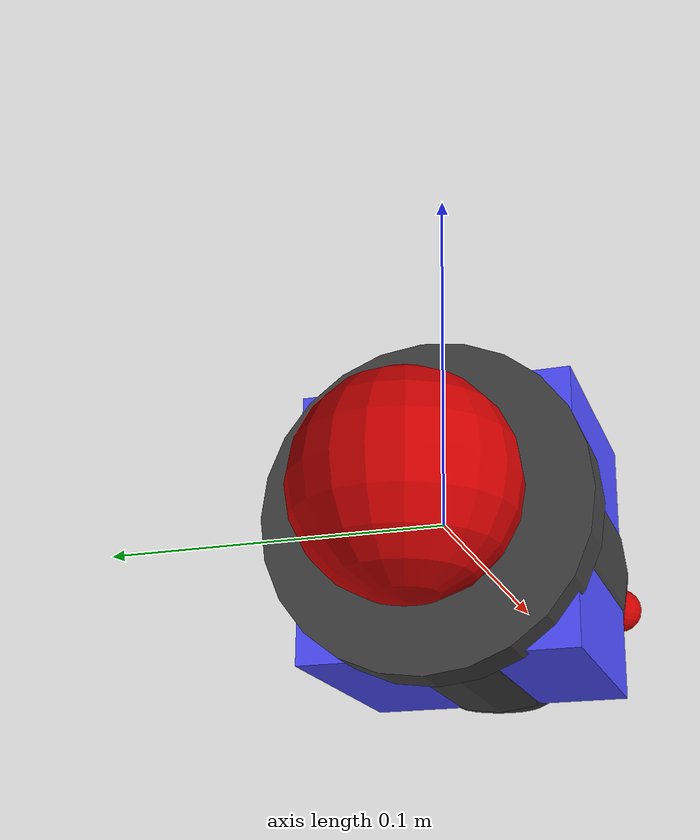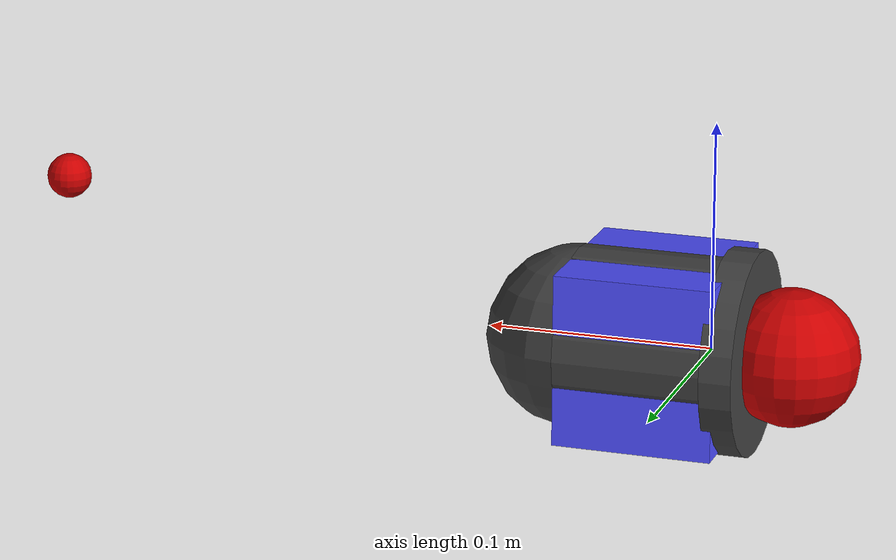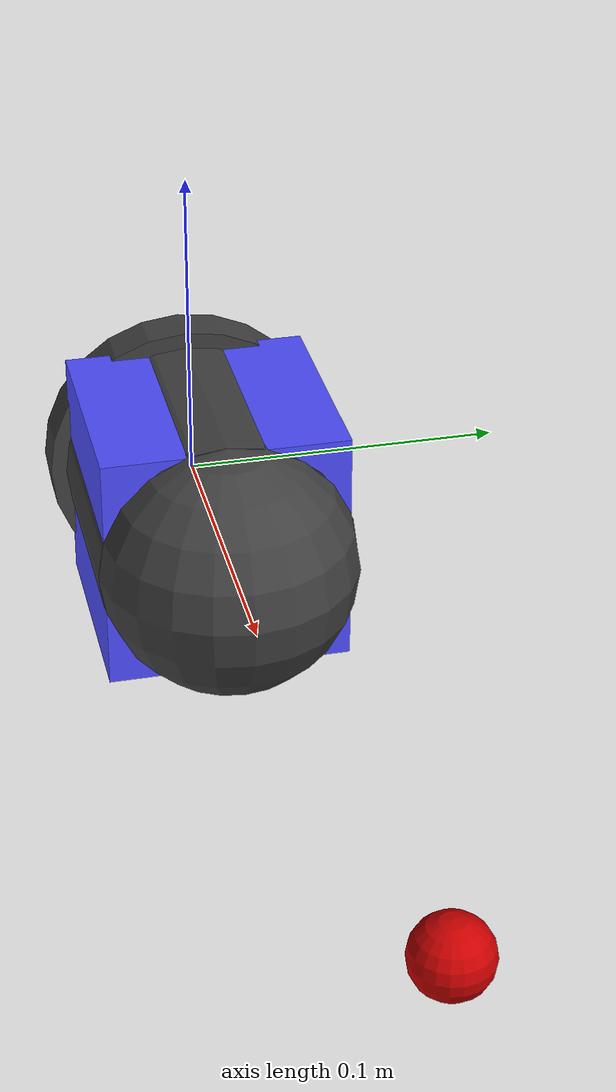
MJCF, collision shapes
<mujoco>
    <compiler angle="radian" inertiafromgeom="auto" inertiagrouprange="4 5"/>
    <asset>
        <texture name="T_plug_plast" type="cube" file="../textures/plaster1.png"/>

        <material name="plug_col" rgba="0.3 0.3 1.0 0.5" shininess="0" specular="0"/>
        <material name="plug_green" rgba="0 .5 0 1" shininess="1" reflectance=".7" specular=".5"/>
        <material name="plug_black" rgba=".25 .25 .25 1" shininess="1" reflectance=".7" specular=".5"/>
        <material name="plug_white" rgba=".6 .6 .6 1" shininess="1" reflectance=".7" specular=".5"/>
        <material name="plug_gold" rgba=".65 .51 .24 1" shininess="1" reflectance=".7" specular=".5"/>

        <material name="plug_plast" texture="T_plug_plast" shininess="1" reflectance=".7" specular=".5"/>

        <mesh file="../objects/meshes/plug/plug_head.stl" name="plug_head"/>
        <mesh file="../objects/meshes/plug/plug.stl" name="plug"/>
        <mesh file="../objects/meshes/plug/plug_wall.stl" name="plug_wall"/>
        <mesh file="../objects/meshes/plug/plug_plastic.stl" name="plug_plastic"/>
    </asset>
    <default>
        <default class="plug_base">
            <joint armature="0.001" damping="2" limited="true"/>
            <geom conaffinity="0" contype="0" group="1" type="mesh"/>
            <position ctrllimited="true" ctrlrange="0 1.57"/>
            <default class="plug_viz">
                <geom condim="4" type="mesh"/>
            </default>
            <default class="plug_col">
                <geom conaffinity="1" condim="3" contype="1" group="4" material="plug_col" solimp="0.99 0.99 0.01" solref="0.01 1"/>
            </default>
        </default>
    </default>

    <worldbody>
            <joint type="free"/>
            <body childclass="plug_base" name="plug">
                <geom material="plug_gold" mesh="plug" pos="-0.04 0.015 0.0"/>
                <geom material="plug_black" euler="0 1.57 0" pos="-0.013 0 0" size="0.045  0.007" type="cylinder"/>
                <geom material="plug_black" pos="0.06 0 0" size="0.04" type="sphere"/>
                <geom material="plug_black" euler="0 1.57 0" pos="0.025 0.0 -0.0" size="0.04 0.035" type="cylinder"/>

                <geom class="plug_col" pos="-0.035 0 0" size="0.03" type="sphere" mass=".05" rgba="0.8 0 0 1"/>
                <geom class="plug_col" euler="0 1.57 0" pos="-0.013 0 0" size="0.045  0.007" type="cylinder" mass=".01" rgba="0.8 0 0 1"/>
                <geom class="plug_col" pos="0.06 0 0" size="0.04" type="sphere" mass=".01" rgba="0.8 0 0 1"/>
                <geom class="plug_col" euler="0 1.57 0" pos="0.025 0.0 -0.0" size="0.038 0.038 0.035" type="box" mass=".01"/>

                <site name="pegHead" pos="-0.04 0 0" size="0.005" rgba="0.8 0 0 1"/>
                <site name="pegEnd" pos="0.04 0 0" size="0.005" rgba="0.8 0 0 1"/>
            </body>
        <site name="goal" pos=".3 0 0.05" size="0.01" rgba="0.8 0 0 1"/>
    </worldbody>
</mujoco>
